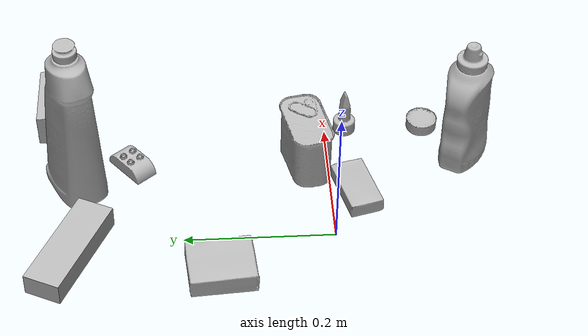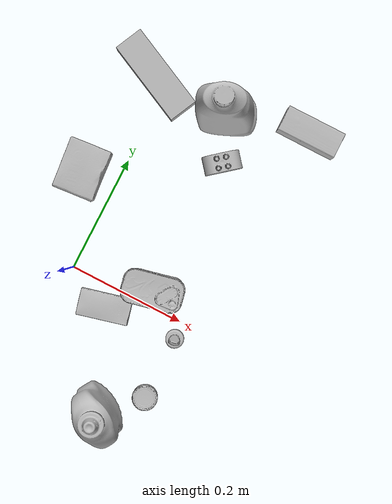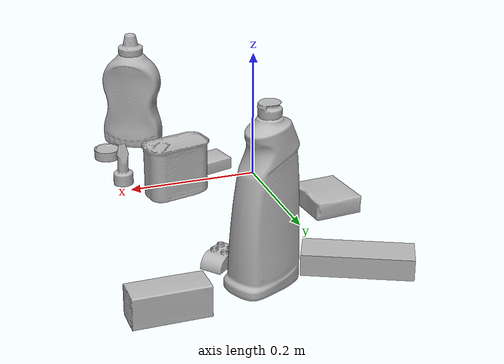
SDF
<sdf version="1.4">
  <world name="default">
    <light name="light1" type="point">
      <pose>0 0 1 0 0 0</pose>
      <diffuse>3 3 3 1</diffuse>
      <specular>3 3 3 1</specular>
    </light>
    <light name="light2" type="point">
      <pose>0 0.5 2 0 0 0</pose>
      <diffuse>1 1 1 1</diffuse>
      <specular>1 1 1 1</specular>
    </light>
    <light name="light3" type="point">
      <pose>0 0.5 2 0 0 0</pose>
      <diffuse>3 3 3 1</diffuse>
      <specular>3 3 3 1</specular>
    </light>
    <scene>
      <ambient>0.7 0.7 0.7</ambient>
    </scene>
    <model name="bottle1">
      <link name="link_bottle1">
        <collision name="default">
          <geometry>
            <mesh>
              <uri>model://bleach_cleanser/collision_meshes/collision.obj</uri>
              <scale>1.0 1.0 1.0</scale>
            </mesh>
          </geometry>
          <surface>
            <friction>
              <ode>
                <mu>0.5</mu>
                <mu2>0.5</mu2>
              </ode>
            </friction>
          <contact>
        <ode>
            <max_vel>0</max_vel>
            <min_depth>0.0001</min_depth>
            <kp>1e8</kp>
        </ode>
    </contact></surface>
        </collision>
        <visual name="default">
          <geometry>
            <mesh>
              <uri>model://bleach_cleanser/visual_meshes/visual.dae</uri>
              <scale>1.0 1.0 1.0</scale>
            </mesh>
          </geometry>
        </visual>
        <inertial>
          <mass>0.5324875712394714</mass>
          <pose>0.00012193183647468686 0.0037838825955986977 -0.024421609938144684 -0.07381669869164166 0.0004201168944593395 -0.0068750469260774934</pose>
          <inertia>
            <ixx>0.0025916947</ixx>
            <iyy>0.0024150796</iyy>
            <izz>0.00044311245</izz>
            <ixy>0</ixy>
            <ixz>0</ixz>
            <iyz>0</iyz>
          </inertia>
        </inertial>
      </link>
      <pose>0.11012856662273407 0.3416709005832672 0.12576988339424133 -0.002500870104601377 0.003253337725269085 2.0047538207600457</pose>
    </model>
    <model name="bottle2">
      <link name="link_bottle2">
        <collision name="default">
          <geometry>
            <mesh>
              <uri>model://mustard_bottle/collision_meshes/collision.obj</uri>
              <scale>1.0 1.0 1.0</scale>
            </mesh>
          </geometry>
          <surface>
            <friction>
              <ode>
                <mu>0.5</mu>
                <mu2>0.5</mu2>
              </ode>
            </friction>
          <contact>
        <ode>
            <max_vel>0</max_vel>
            <min_depth>0.0001</min_depth>
            <kp>1e8</kp>
        </ode>
    </contact></surface>
        </collision>
        <visual name="default">
          <geometry>
            <mesh>
              <uri>model://mustard_bottle/visual_meshes/visual.dae</uri>
              <scale>1.0 1.0 1.0</scale>
            </mesh>
          </geometry>
        </visual>
        <inertial>
          <mass>0.7762566804885864</mass>
          <pose>0.0005032453336752951 -0.0001564739941386506 -0.01747579127550125 0.0004182320844136383 0.0009465775961192733 0.024853776391442105</pose>
          <inertia>
            <ixx>0.0021555587</ixx>
            <iyy>0.0018913207</iyy>
            <izz>0.00056809856</izz>
            <ixy>0</ixy>
            <ixz>0</ixz>
            <iyz>0</iyz>
          </inertia>
        </inertial>
      </link>
      <pose>0.1485939770936966 -0.1865769624710083 0.09611978381872177 0.007471370094676712 -0.007319357555688259 -2.1327486354027907</pose>
    </model>
    <model name="toy1">
      <link name="link_toy1">
        <collision name="default">
          <geometry>
            <mesh>
              <uri>model://e_toy_airplane/collision_meshes/collision.obj</uri>
              <scale>1.0 1.0 1.0</scale>
            </mesh>
          </geometry>
          <surface>
            <friction>
              <ode>
                <mu>0.5</mu>
                <mu2>0.5</mu2>
              </ode>
            </friction>
          <contact>
        <ode>
            <max_vel>0</max_vel>
            <min_depth>0.0001</min_depth>
            <kp>1e8</kp>
        </ode>
    </contact></surface>
        </collision>
        <visual name="default">
          <geometry>
            <mesh>
              <uri>model://e_toy_airplane/visual_meshes/visual.dae</uri>
              <scale>1.0 1.0 1.0</scale>
            </mesh>
          </geometry>
        </visual>
        <inertial>
          <mass>0.01693064346909523</mass>
          <pose>0.00011740485206246376 -2.2482869098894298e-05 -0.011187203228473663 0.005518486263483037 0.009228306153066855 0.15041416456770357</pose>
          <inertia>
            <ixx>5.1674256e-06</ixx>
            <iyy>5.1145657e-06</iyy>
            <izz>1.5530146e-06</izz>
            <ixy>0</ixy>
            <ixz>0</ixz>
            <iyz>0</iyz>
          </inertia>
        </inertial>
      </link>
      <pose>0.2051478922367096 -0.028162874281406403 0.03321221098303795 6.319380307532861e-05 -9.237615284000527e-05 -1.5107918023189073</pose>
    </model>
    <model name="toy2">
      <link name="link_toy2">
        <collision name="default">
          <geometry>
            <mesh>
              <uri>model://a_lego_duplo/collision_meshes/collision.obj</uri>
              <scale>1.0 1.0 1.0</scale>
            </mesh>
          </geometry>
          <surface>
            <friction>
              <ode>
                <mu>0.5</mu>
                <mu2>0.5</mu2>
              </ode>
            </friction>
          <contact>
        <ode>
            <max_vel>0</max_vel>
            <min_depth>0.0001</min_depth>
            <kp>1e8</kp>
        </ode>
    </contact></surface>
        </collision>
        <visual name="default">
          <geometry>
            <mesh>
              <uri>model://a_lego_duplo/visual_meshes/visual.dae</uri>
              <scale>1.0 1.0 1.0</scale>
            </mesh>
          </geometry>
        </visual>
        <inertial>
          <mass>0.026311658322811127</mass>
          <pose>-0.000113377594971098 0.00018517566786613315 0.0003692609607242048 -0.014117022075399962 -0.00012566465015892618 6.142856652531641e-05</pose>
          <inertia>
            <ixx>3.3733654e-06</ixx>
            <iyy>7.557078e-06</iyy>
            <izz>9.361117e-06</izz>
            <ixy>0</ixy>
            <ixz>0</ixz>
            <iyz>0</iyz>
          </inertia>
        </inertial>
      </link>
      <pose>0.14088720083236694 0.2686130404472351 0.012112000025808811 1.3821991766439905e-08 -1.4319464524064318e-08 -2.4461993939124476</pose>
    </model>
    <model name="can1">
      <link name="link_can1">
        <collision name="default">
          <geometry>
            <mesh>
              <uri>model://tuna_fish_can/collision_meshes/collision.obj</uri>
              <scale>0.5 0.5 0.5</scale>
            </mesh>
          </geometry>
          <surface>
            <friction>
              <ode>
                <mu>0.5</mu>
                <mu2>0.5</mu2>
              </ode>
            </friction>
          <contact>
        <ode>
            <max_vel>0</max_vel>
            <min_depth>0.0001</min_depth>
            <kp>1e8</kp>
        </ode>
    </contact></surface>
        </collision>
        <visual name="default">
          <geometry>
            <mesh>
              <uri>model://tuna_fish_can/visual_meshes/visual.dae</uri>
              <scale>0.5 0.5 0.5</scale>
            </mesh>
          </geometry>
        </visual>
        <inertial>
          <mass>0.025987863540649414</mass>
          <pose>-2.0361601855256595e-05 -7.256298886204604e-06 -0.0005269025568850338 -0.0017944787689317097 0.0001716279666079131 0.24054509142506303</pose>
          <inertia>
            <ixx>3.5135977e-06</ixx>
            <iyy>3.4989534e-06</iyy>
            <izz>6.0122675e-06</izz>
            <ixy>0</ixy>
            <ixz>0</ixz>
            <iyz>0</iyz>
          </inertia>
        </inertial>
      </link>
      <pose>0.20570547878742218 -0.1376253366470337 0.00851999968290329 -5.811027210064162e-09 1.2950559751387737e-08 -2.016294289087113</pose>
    </model>
    <model name="can2">
      <link name="link_can2">
        <collision name="default">
          <geometry>
            <mesh>
              <uri>model://potted_meat_can/collision_meshes/collision.obj</uri>
              <scale>1.0 1.0 1.0</scale>
            </mesh>
          </geometry>
          <surface>
            <friction>
              <ode>
                <mu>0.5</mu>
                <mu2>0.5</mu2>
              </ode>
            </friction>
          <contact>
        <ode>
            <max_vel>0</max_vel>
            <min_depth>0.0001</min_depth>
            <kp>1e8</kp>
        </ode>
    </contact></surface>
        </collision>
        <visual name="default">
          <geometry>
            <mesh>
              <uri>model://potted_meat_can/visual_meshes/visual.dae</uri>
              <scale>1.0 1.0 1.0</scale>
            </mesh>
          </geometry>
        </visual>
        <inertial>
          <mass>0.2732236087322235</mass>
          <pose>0.00022888141393195838 -5.989111741655506e-05 -0.0006367441383190453 -0.028093326615163196 -0.007232604646238421 0.015406262399643026</pose>
          <inertia>
            <ixx>0.0003514736</ixx>
            <iyy>0.00021354685</iyy>
            <izz>0.00025563012</izz>
            <ixy>0</ixy>
            <ixz>0</ixz>
            <iyz>0</iyz>
          </inertia>
        </inertial>
      </link>
      <pose>0.13649830222129822 0.0308773722499609 0.042128000408411026 -6.342998036318618e-08 -4.546039850102023e-07 1.7775449712643339</pose>
    </model>
    <model name="box1">
      <link name="link_box1">
        <collision name="default">
          <geometry>
            <mesh>
              <uri>model://gelatin_box/collision_meshes/collision.obj</uri>
              <scale>1.0 1.0 1.0</scale>
            </mesh>
          </geometry>
          <surface>
            <friction>
              <ode>
                <mu>0.5</mu>
                <mu2>0.5</mu2>
              </ode>
            </friction>
          <contact>
        <ode>
            <max_vel>0</max_vel>
            <min_depth>0.0001</min_depth>
            <kp>1e8</kp>
        </ode>
    </contact></surface>
        </collision>
        <visual name="default">
          <geometry>
            <mesh>
              <uri>model://gelatin_box/visual_meshes/visual.dae</uri>
              <scale>1.0 1.0 1.0</scale>
            </mesh>
          </geometry>
        </visual>
        <inertial>
          <mass>0.14974145591259003</mass>
          <pose>0.0004319618456065655 0.00011156871914863586 -0.0003640321083366871 -0.0010503719798216618 -0.004755819622564704 0.01644055760929568</pose>
          <inertia>
            <ixx>0.00010570526</ixx>
            <iyy>7.550471e-05</iyy>
            <izz>0.00016090693</izz>
            <ixy>0</ixy>
            <ixz>0</ixz>
            <iyz>0</iyz>
          </inertia>
        </inertial>
      </link>
      <pose>-0.06029495224356651 0.15178808569908142 0.015168316662311554 0.005597427403790019 -0.007304491441100367 0.08404437182765134</pose>
    </model>
    <model name="box2">
      <link name="link_box2">
        <collision name="default">
          <geometry>
            <mesh>
              <uri>model://sugar_box/collision_meshes/collision.obj</uri>
              <scale>0.5 0.5 0.5</scale>
            </mesh>
          </geometry>
          <surface>
            <friction>
              <ode>
                <mu>0.5</mu>
                <mu2>0.5</mu2>
              </ode>
            </friction>
          <contact>
        <ode>
            <max_vel>0</max_vel>
            <min_depth>0.0001</min_depth>
            <kp>1e8</kp>
        </ode>
    </contact></surface>
        </collision>
        <visual name="default">
          <geometry>
            <mesh>
              <uri>model://sugar_box/visual_meshes/visual.dae</uri>
              <scale>0.5 0.5 0.5</scale>
            </mesh>
          </geometry>
        </visual>
        <inertial>
          <mass>0.07143953442573547</mass>
          <pose>0.0005171863595023751 1.924554817378521e-05 -0.00018182402709499002 -0.0004046263588767038 0.0010506634057764815 0.0026153785560837986</pose>
          <inertia>
            <ixx>1.4880804e-05</ixx>
            <iyy>4.8097805e-05</iyy>
            <izz>5.757883e-05</izz>
            <ixy>0</ixy>
            <ixz>0</ixz>
            <iyz>0</iyz>
          </inertia>
        </inertial>
      </link>
      <pose>0.07678985595703125 -0.03392672538757324 0.011399301700294018 0.0007745759852559157 -0.023433002029427163 -2.89746976597514</pose>
    </model>
    <model name="box3">
      <link name="link_box3">
        <collision name="default">
          <geometry>
            <mesh>
              <uri>model://jenga/collision_meshes/collision.obj</uri>
              <scale>1.0 1.0 1.0</scale>
            </mesh>
          </geometry>
          <surface>
            <friction>
              <ode>
                <mu>0.5</mu>
                <mu2>0.5</mu2>
              </ode>
            </friction>
          <contact>
        <ode>
            <max_vel>0</max_vel>
            <min_depth>0.0001</min_depth>
            <kp>1e8</kp>
        </ode>
    </contact></surface>
        </collision>
        <visual name="default">
          <geometry>
            <mesh>
              <uri>model://jenga/visual_meshes/visual.dae</uri>
              <scale>1.0 1.0 1.0</scale>
            </mesh>
          </geometry>
        </visual>
        <inertial>
          <mass>0.2564851939678192</mass>
          <pose>-2.502855807051674e-07 -0.00010250010382151231 -4.0923401684267446e-05 0.0 -7.342154049184251e-07 0.0</pose>
          <inertia>
            <ixx>7.097568e-05</ixx>
            <iyy>0.00048092927</iyy>
            <izz>0.0005134329</izz>
            <ixy>0</ixy>
            <ixz>0</ixz>
            <iyz>0</iyz>
          </inertia>
        </inertial>
      </link>
      <pose>-0.022675976157188416 0.34602466225624084 0.01499999687075615 -3.026533252627468e-08 -5.87941616241596e-09 -0.4445636136000587</pose>
    </model>
    <model name="box4">
      <link name="link_box4">
        <collision name="default">
          <geometry>
            <mesh>
              <uri>model://wood_block/collision_meshes/collision.obj</uri>
              <scale>0.5 0.5 0.5</scale>
            </mesh>
          </geometry>
          <surface>
            <friction>
              <ode>
                <mu>0.5</mu>
                <mu2>0.5</mu2>
              </ode>
            </friction>
          <contact>
        <ode>
            <max_vel>0</max_vel>
            <min_depth>0.0001</min_depth>
            <kp>1e8</kp>
        </ode>
    </contact></surface>
        </collision>
        <visual name="default">
          <geometry>
            <mesh>
              <uri>model://wood_block/visual_meshes/visual.dae</uri>
              <scale>0.5 0.5 0.5</scale>
            </mesh>
          </geometry>
        </visual>
        <inertial>
          <mass>0.2543213665485382</mass>
          <pose>-2.906657982748584e-06 -0.000285404734313488 0.00013204291462898254 -0.05220794665887619 -0.0051926956484831775 -0.006861378561045436</pose>
          <inertia>
            <ixx>8.508011e-05</ixx>
            <iyy>0.00026876814</iyy>
            <izz>0.00026776275</izz>
            <ixy>0</ixy>
            <ixz>0</ixz>
            <iyz>0</iyz>
          </inertia>
        </inertial>
      </link>
      <pose>0.24821482598781586 0.37795162200927734 0.022629259154200554 -0.005208553104321639 0.005718601906022239 0.005279067541422755</pose>
    </model>
  <physics type="ode">
      <max_contacts>50</max_contacts>
      <ode>
        <solver>
          <type>quick</type>
          <iters>75</iters>
        </solver>
        <constraints>
          <contact_max_correcting_vel>0</contact_max_correcting_vel>
          <contact_surface_layer>0</contact_surface_layer>
        </constraints>
      </ode>
    </physics></world>
</sdf>
